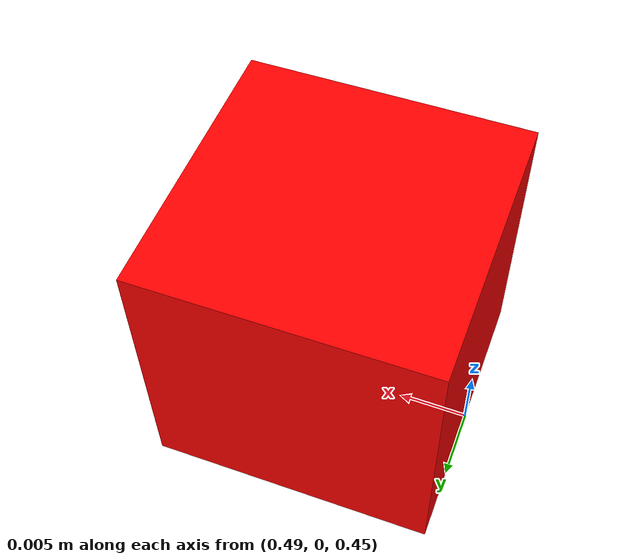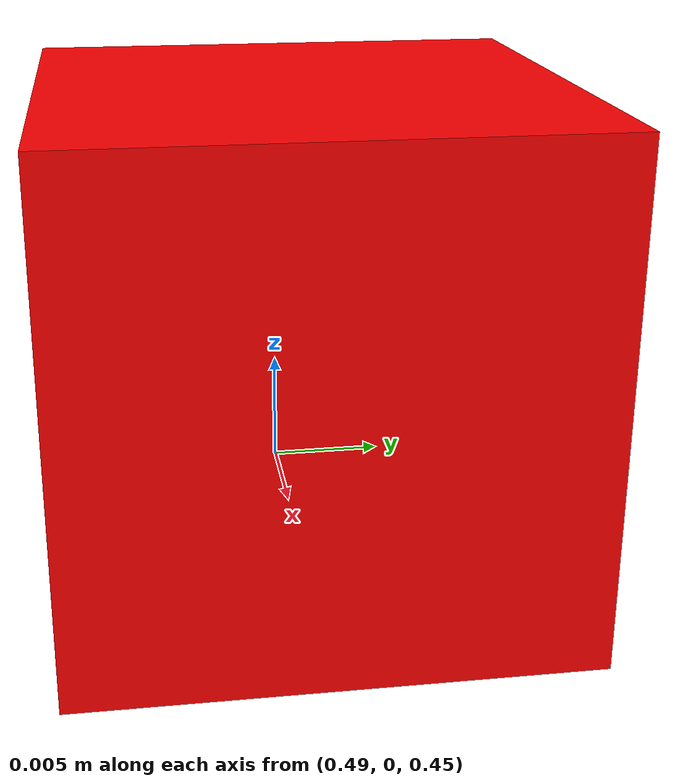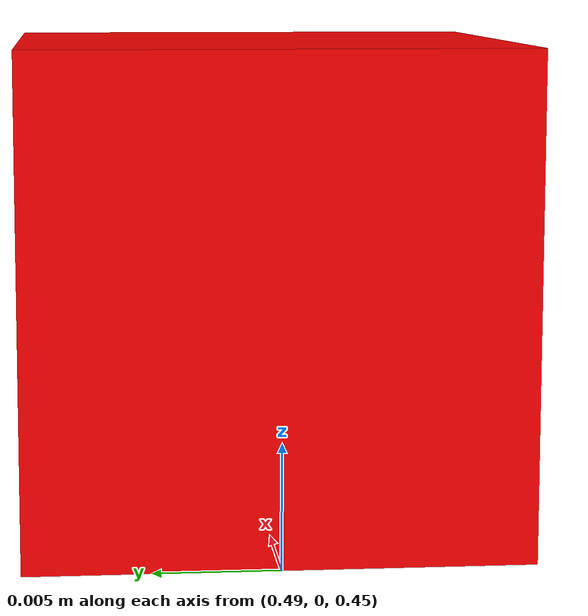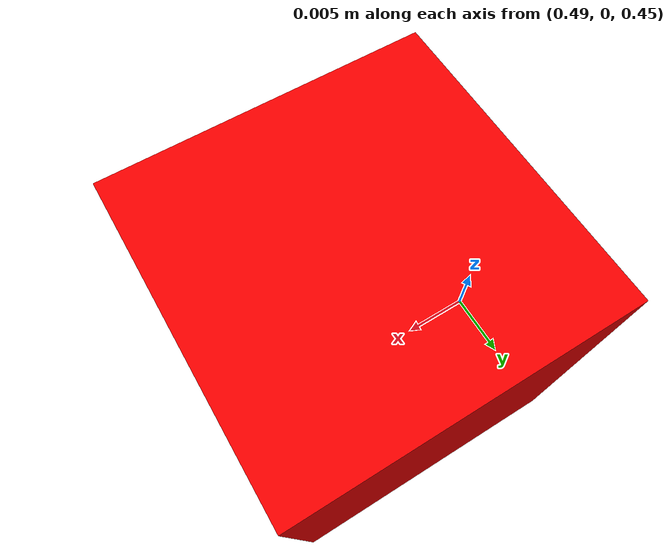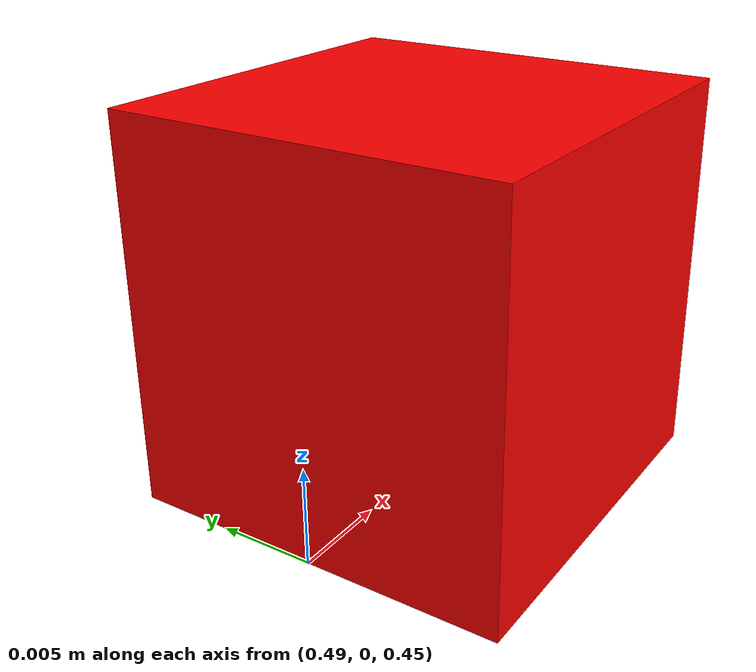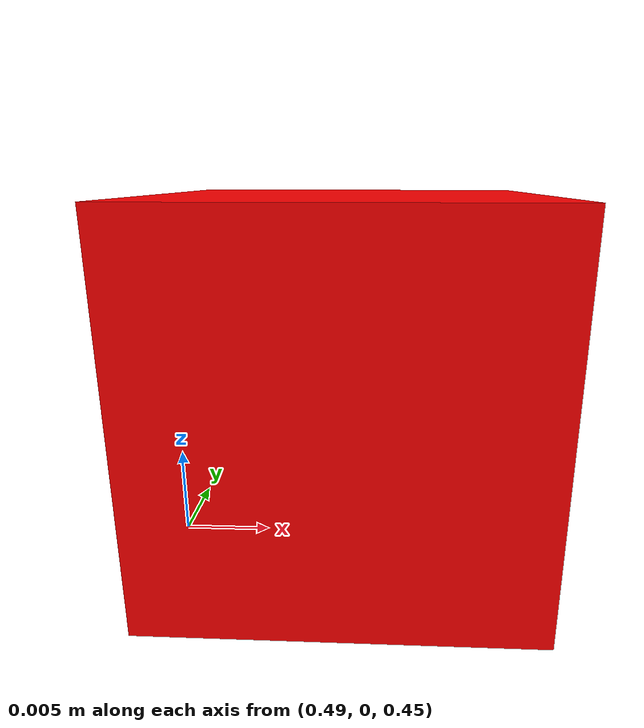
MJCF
<mujoco>
    <worldbody>
        <body name="肝俞穴" pos="0.5 0.0 0.46">
            <joint name="肝俞穴:joint" type="free" damping="0.1" />
            <geom name="肝俞穴" size="0.01 0.01 0.01" rgba="1 0 0 1" type="box" conaffinity="0" contype="0" group="1" density="0"/>
            <geom name="肝俞穴_collision" size="0.01 0.01 0.01" type="box" conaffinity="1" condim="4" contype="1" group="4" mass="0.01" />
        </body>
    </worldbody>
</mujoco>
